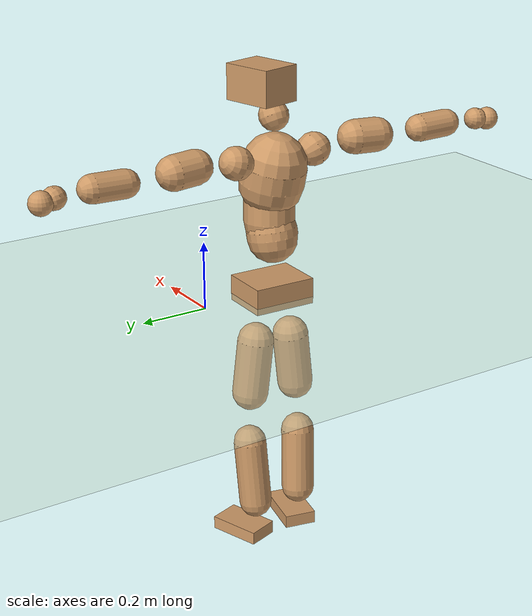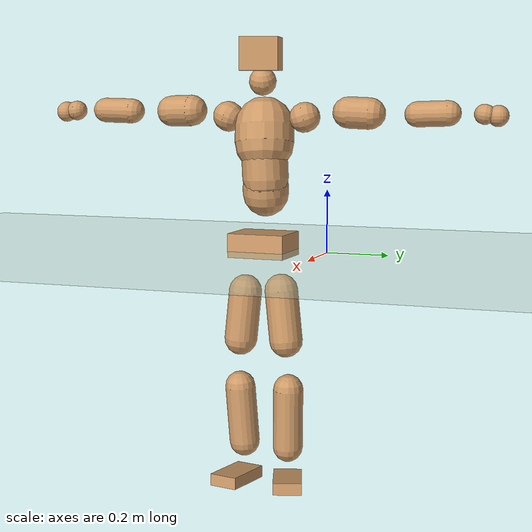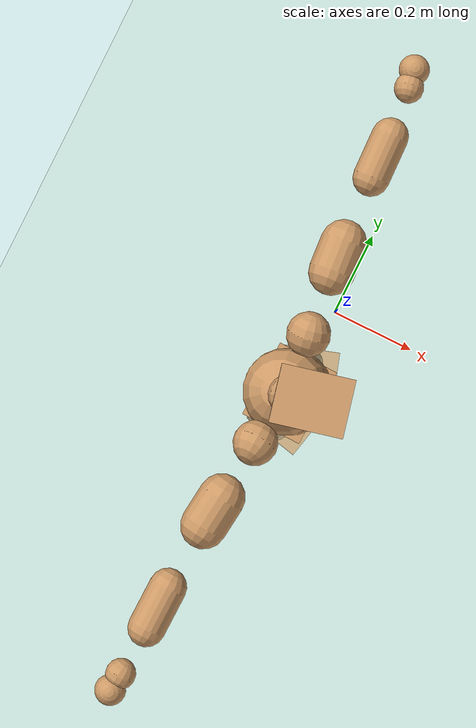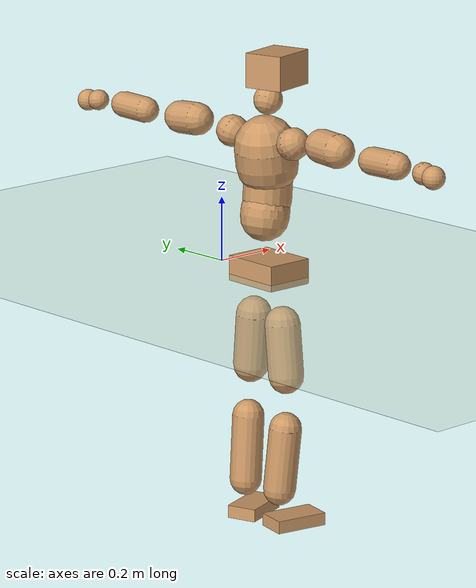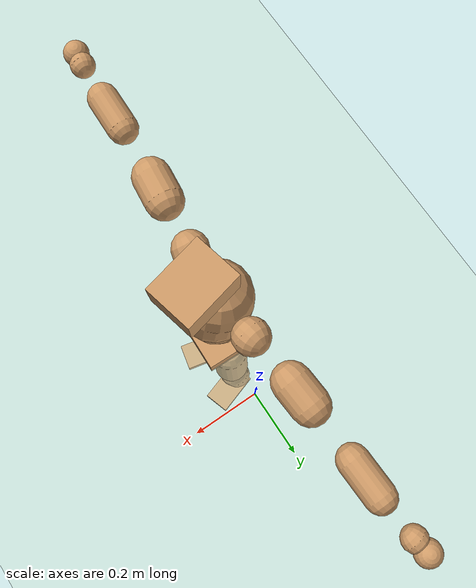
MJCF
<mujoco model="humanoid">
  <compiler coordinate="local" angle="radian"/>
  <default>
    <joint damping="0.0" armature="0.01" stiffness="0.0" limited="true"/>
    <geom conaffinity="1" condim="3" contype="7" margin="0.001" rgba="0.8 0.6 .4 1"/>
  </default>
  <asset>
    <texture type="skybox" builtin="gradient" rgb1=".4 .5 .6" rgb2="0 0 0" width="100" height="100"/>
    <texture builtin="flat" height="1278" mark="cross" markrgb="1 1 1" name="texgeom" random="0.01" rgb1="0.8 0.6 0.4" rgb2="0.8 0.6 0.4" type="cube" width="127"/>
    <texture builtin="checker" height="100" name="texplane" rgb1="0 0 0" rgb2="0.8 0.8 0.8" type="2d" width="100"/>
    <material name="MatPlane" reflectance="0.5" shininess="1" specular="1" texrepeat="60 60" texture="texplane"/>
    <material name="geom" texture="texgeom" texuniform="true"/>
  </asset>
  <worldbody>
    <light cutoff="100" diffuse="1 1 1" dir="-0 0 -1.3" directional="true" exponent="1" pos="0 0 1.3" specular=".1 .1 .1"/>
    <geom conaffinity="1" condim="3" name="floor" pos="0 0 0" rgba="0.8 0.9 0.8 1" size="100 100 .2" type="plane" material="MatPlane"/>
    <body name="Pelvis" pos="-0.0017 -0.2192 0.0243">
      <freejoint name="Pelvis"/>
      <geom type="box" contype="1" conaffinity="1" density="5359.374958" pos="-0.0099 0.0003 -0.0074" size="0.0748 0.0939 0.0386" quat="0.9999 0.0000 0.0000 -0.0145" name="Pelvis"/>
      <body name="L_Hip" pos="-0.016 0.0516 -0.0725">
        <joint name="L_Hip_x" type="hinge" pos="0 0 0" axis="1 0 0" stiffness="1600" damping="160" armature="0.02" range="-180.0000 180.0000"/>
        <joint name="L_Hip_y" type="hinge" pos="0 0 0" axis="0 1 0" stiffness="1600" damping="160" armature="0.02" range="-180.0000 180.0000"/>
        <joint name="L_Hip_z" type="hinge" pos="0 0 0" axis="0 0 1" stiffness="1600" damping="160" armature="0.02" range="-180.0000 180.0000"/>
        <geom type="capsule" contype="1" conaffinity="1" density="2040.816327" size="0.0539" fromto="0.0022 0.0091 -0.0834 0.0064 0.0269 -0.2471" name="L_Hip"/>
        <body name="L_Knee" pos="0.0085 0.036 -0.3305">
          <joint name="L_Knee_x" type="hinge" pos="0 0 0" axis="1 0 0" stiffness="1600" damping="160" armature="0.02" range="-180.0000 180.0000"/>
          <joint name="L_Knee_y" type="hinge" pos="0 0 0" axis="0 1 0" stiffness="1600" damping="160" armature="0.02" range="-180.0000 180.0000"/>
          <joint name="L_Knee_z" type="hinge" pos="0 0 0" axis="0 0 1" stiffness="1600" damping="160" armature="0.02" range="-180.0000 180.0000"/>
          <geom type="capsule" contype="1" conaffinity="1" density="1234.567901" size="0.0488" fromto="-0.0070 -0.0028 -0.0784 -0.0249 -0.0099 -0.2773" name="L_Knee"/>
          <body name="L_Ankle" pos="-0.0319 -0.0127 -0.3557">
            <joint name="L_Ankle_x" type="hinge" pos="0 0 0" axis="1 0 0" stiffness="1600" damping="160" armature="0.02" range="-180.0000 180.0000"/>
            <joint name="L_Ankle_y" type="hinge" pos="0 0 0" axis="0 1 0" stiffness="1600" damping="160" armature="0.02" range="-180.0000 180.0000"/>
            <joint name="L_Ankle_z" type="hinge" pos="0 0 0" axis="0 0 1" stiffness="1600" damping="160" armature="0.02" range="-180.0000 180.0000"/>
            <geom type="box" contype="1" conaffinity="1" density="1000.000029" pos="0.0552 0.0178 -0.0258" size="0.0795 0.0465 0.0196" quat="0.9878 0.0000 0.0000 0.1555" name="L_Ankle"/>
            <body name="L_Toe" pos="0.1104 0.0356 -0.0517">
              <joint name="L_Toe_x" type="hinge" pos="0 0 0" axis="1 0 0" stiffness="1000" damping="100" armature="0.02" range="-180.0000 180.0000"/>
              <joint name="L_Toe_y" type="hinge" pos="0 0 0" axis="0 1 0" stiffness="1000" damping="100" armature="0.02" range="-180.0000 180.0000"/>
              <joint name="L_Toe_z" type="hinge" pos="0 0 0" axis="0 0 1" stiffness="1000" damping="100" armature="0.02" range="-180.0000 180.0000"/>
              <geom type="box" contype="1" conaffinity="1" density="7979111.598824" pos="0.0000 0.0000 0.0251" size="0.001 0.0023 0.0009" quat="0.9870 0.0000 0.0000 0.1608" name="L_Toe"/>
            </body>
          </body>
        </body>
      </body>
      <body name="R_Hip" pos="-0.012 -0.0535 -0.0803">
        <joint name="R_Hip_x" type="hinge" pos="0 0 0" axis="1 0 0" stiffness="1600" damping="160" armature="0.02" range="-180.0000 180.0000"/>
        <joint name="R_Hip_y" type="hinge" pos="0 0 0" axis="0 1 0" stiffness="1600" damping="160" armature="0.02" range="-180.0000 180.0000"/>
        <joint name="R_Hip_z" type="hinge" pos="0 0 0" axis="0 0 1" stiffness="1600" damping="160" armature="0.02" range="-180.0000 180.0000"/>
        <geom type="capsule" contype="1" conaffinity="1" density="2040.816327" size="0.0535" fromto="-0.0004 -0.0088 -0.0831 -0.0011 -0.0256 -0.2421" name="R_Hip"/>
        <body name="R_Knee" pos="-0.0015 -0.0344 -0.3252">
          <joint name="R_Knee_x" type="hinge" pos="0 0 0" axis="1 0 0" stiffness="1600" damping="160" armature="0.02" range="-180.0000 180.0000"/>
          <joint name="R_Knee_y" type="hinge" pos="0 0 0" axis="0 1 0" stiffness="1600" damping="160" armature="0.02" range="-180.0000 180.0000"/>
          <joint name="R_Knee_z" type="hinge" pos="0 0 0" axis="0 0 1" stiffness="1600" damping="160" armature="0.02" range="-180.0000 180.0000"/>
          <geom type="capsule" contype="1" conaffinity="1" density="1234.567901" size="0.0497" fromto="-0.0066 0.0037 -0.0793 -0.0225 0.0124 -0.2686" name="R_Knee"/>
          <body name="R_Ankle" pos="-0.0291 0.016 -0.3479">
            <joint name="R_Ankle_x" type="hinge" pos="0 0 0" axis="1 0 0" stiffness="1600" damping="160" armature="0.02" range="-180.0000 180.0000"/>
            <joint name="R_Ankle_y" type="hinge" pos="0 0 0" axis="0 1 0" stiffness="1600" damping="160" armature="0.02" range="-180.0000 180.0000"/>
            <joint name="R_Ankle_z" type="hinge" pos="0 0 0" axis="0 0 1" stiffness="1600" damping="160" armature="0.02" range="-180.0000 180.0000"/>
            <geom type="box" contype="1" conaffinity="1" density="999.999993" pos="0.0587 -0.0128 -0.0271" size="0.0822 0.0478 0.0194" quat="0.9942 0.0000 0.0000 -0.1073" name="R_Ankle"/>
            <body name="R_Toe" pos="0.1175 -0.0257 -0.0542">
              <joint name="R_Toe_x" type="hinge" pos="0 0 0" axis="1 0 0" stiffness="1000" damping="100" armature="0.02" range="-180.0000 180.0000"/>
              <joint name="R_Toe_y" type="hinge" pos="0 0 0" axis="0 1 0" stiffness="1000" damping="100" armature="0.02" range="-180.0000 180.0000"/>
              <joint name="R_Toe_z" type="hinge" pos="0 0 0" axis="0 0 1" stiffness="1000" damping="100" armature="0.02" range="-180.0000 180.0000"/>
              <geom type="box" contype="1" conaffinity="1" density="8200315.057143" pos="0.0000 0.0000 0.0286" size="0.001 0.0024 0.001" quat="0.9952 0.0000 0.0000 -0.0976" name="R_Toe"/>
            </body>
          </body>
        </body>
      </body>
      <body name="Torso" pos="-0.0313 0.0036 0.1084">
        <joint name="Torso_x" type="hinge" pos="0 0 0" axis="1 0 0" stiffness="2000" damping="200" armature="0.02" range="-180.0000 180.0000"/>
        <joint name="Torso_y" type="hinge" pos="0 0 0" axis="0 1 0" stiffness="2000" damping="200" armature="0.02" range="-180.0000 180.0000"/>
        <joint name="Torso_z" type="hinge" pos="0 0 0" axis="0 0 1" stiffness="2000" damping="200" armature="0.02" range="-180.0000 180.0000"/>
        <geom type="capsule" contype="1" conaffinity="1" density="2040.816327" size="0.0739" fromto="0.0139 0.0026 0.0726 0.0092 0.0017 0.0481" name="Torso"/>
        <body name="Spine" pos="0.0231 0.0042 0.1207">
          <joint name="Spine_x" type="hinge" pos="0 0 0" axis="1 0 0" stiffness="2000" damping="200" armature="0.02" range="-180.0000 180.0000"/>
          <joint name="Spine_y" type="hinge" pos="0 0 0" axis="0 1 0" stiffness="2000" damping="200" armature="0.02" range="-180.0000 180.0000"/>
          <joint name="Spine_z" type="hinge" pos="0 0 0" axis="0 0 1" stiffness="2000" damping="200" armature="0.02" range="-180.0000 180.0000"/>
          <geom type="capsule" contype="1" conaffinity="1" density="2040.816327" size="0.0738" fromto="0.0034 -0.0023 0.0737 -0.0012 0.0008 -0.0247" name="Spine"/>
          <body name="Chest" pos="0.0023 -0.0016 0.049">
            <joint name="Chest_x" type="hinge" pos="0 0 0" axis="1 0 0" stiffness="2000" damping="200" armature="0.02" range="-180.0000 180.0000"/>
            <joint name="Chest_y" type="hinge" pos="0 0 0" axis="0 1 0" stiffness="2000" damping="200" armature="0.02" range="-180.0000 180.0000"/>
            <joint name="Chest_z" type="hinge" pos="0 0 0" axis="0 0 1" stiffness="2000" damping="200" armature="0.02" range="-180.0000 180.0000"/>
            <geom type="capsule" contype="1" conaffinity="1" density="2040.816327" size="0.0945" fromto="-0.0180 -0.0063 0.0926 -0.0076 -0.0027 0.0394" name="Chest"/>
            <body name="Neck" pos="-0.0334 -0.014 0.1915">
              <joint name="Neck_x" type="hinge" pos="0 0 0" axis="1 0 0" stiffness="1000" damping="100" armature="0.02" range="-180.0000 180.0000"/>
              <joint name="Neck_y" type="hinge" pos="0 0 0" axis="0 1 0" stiffness="1000" damping="100" armature="0.02" range="-180.0000 180.0000"/>
              <joint name="Neck_z" type="hinge" pos="0 0 0" axis="0 0 1" stiffness="1000" damping="100" armature="0.02" range="-180.0000 180.0000"/>
              <geom type="capsule" contype="1" conaffinity="1" density="1000" size="0.0434" fromto="0.0220 0.0045 0.0415 0.0229 0.0047 0.0433" name="Neck"/>
              <body name="Head" pos="0.045 0.0092 0.0848">
                <joint name="Head_x" type="hinge" pos="0 0 0" axis="1 0 0" stiffness="1000" damping="100" armature="0.02" range="-180.0000 180.0000"/>
                <joint name="Head_y" type="hinge" pos="0 0 0" axis="0 1 0" stiffness="1000" damping="100" armature="0.02" range="-180.0000 180.0000"/>
                <joint name="Head_z" type="hinge" pos="0 0 0" axis="0 0 1" stiffness="1000" damping="100" armature="0.02" range="-180.0000 180.0000"/>
                <geom type="box" contype="1" conaffinity="1" density="2249.999973" pos="0.0235 0.0056 0.0434" size="0.0763 0.0606 0.0518" quat="0.9932 0.0000 0.0000 0.1167" name="Head"/>
              </body>
            </body>
            <body name="L_Thorax" pos="-0.02 0.0656 0.1021">
              <joint name="L_Thorax_x" type="hinge" pos="0 0 0" axis="1 0 0" stiffness="1000" damping="100" armature="0.02" range="-180.0000 180.0000"/>
              <joint name="L_Thorax_y" type="hinge" pos="0 0 0" axis="0 1 0" stiffness="1000" damping="100" armature="0.02" range="-180.0000 180.0000"/>
              <joint name="L_Thorax_z" type="hinge" pos="0 0 0" axis="0 0 1" stiffness="1000" damping="100" armature="0.02" range="-180.0000 180.0000"/>
              <geom type="capsule" contype="1" conaffinity="1" density="1000" size="0.0483" fromto="-0.0089 0.0586 0.0193 -0.0092 0.0605 0.0199" name="L_Thorax"/>
              <body name="L_Shoulder" pos="-0.018 0.1191 0.0392">
                <joint name="L_Shoulder_x" type="hinge" pos="0 0 0" axis="1 0 0" stiffness="1000" damping="100" armature="0.02" range="-720.0000 720.0000"/>
                <joint name="L_Shoulder_y" type="hinge" pos="0 0 0" axis="0 1 0" stiffness="1000" damping="100" armature="0.02" range="-720.0000 720.0000"/>
                <joint name="L_Shoulder_z" type="hinge" pos="0 0 0" axis="0 0 1" stiffness="1000" damping="100" armature="0.02" range="-720.0000 720.0000"/>
                <geom type="capsule" contype="1" conaffinity="1" density="1000" size="0.0497" fromto="-0.0061 0.0794 -0.0035 -0.0114 0.1480 -0.0065" name="L_Shoulder"/>
                <body name="L_Elbow" pos="-0.0175 0.2274 -0.01">
                  <joint name="L_Elbow_x" type="hinge" pos="0 0 0" axis="1 0 0" stiffness="1000" damping="100" armature="0.02" range="-720.0000 720.0000"/>
                  <joint name="L_Elbow_y" type="hinge" pos="0 0 0" axis="0 1 0" stiffness="1000" damping="100" armature="0.02" range="-720.0000 720.0000"/>
                  <joint name="L_Elbow_z" type="hinge" pos="0 0 0" axis="0 0 1" stiffness="1000" damping="100" armature="0.02" range="-720.0000 720.0000"/>
                  <geom type="capsule" contype="1" conaffinity="1" density="1000" size="0.0396" fromto="-0.0025 0.0695 0.0025 -0.0059 0.1670 0.0061" name="L_Elbow"/>
                  <body name="L_Wrist" pos="-0.0084 0.2365 0.0087">
                    <joint name="L_Wrist_x" type="hinge" pos="0 0 0" axis="1 0 0" stiffness="600" damping="60" armature="0.02" range="-180.0000 180.0000"/>
                    <joint name="L_Wrist_y" type="hinge" pos="0 0 0" axis="0 1 0" stiffness="600" damping="60" armature="0.02" range="-180.0000 180.0000"/>
                    <joint name="L_Wrist_z" type="hinge" pos="0 0 0" axis="0 0 1" stiffness="600" damping="60" armature="0.02" range="-180.0000 180.0000"/>
                    <geom type="capsule" contype="1" conaffinity="1" density="1000" size="0.0318" fromto="-0.0069 0.0393 -0.0047 -0.0073 0.0412 -0.0050" name="L_Wrist"/>
                    <body name="L_Hand" pos="-0.0142 0.0805 -0.0097">
                      <joint name="L_Hand_x" type="hinge" pos="0 0 0" axis="1 0 0" stiffness="600" damping="60" armature="0.02" range="-180.0000 180.0000"/>
                      <joint name="L_Hand_y" type="hinge" pos="0 0 0" axis="0 1 0" stiffness="600" damping="60" armature="0.02" range="-180.0000 180.0000"/>
                      <joint name="L_Hand_z" type="hinge" pos="0 0 0" axis="0 0 1" stiffness="600" damping="60" armature="0.02" range="-180.0000 180.0000"/>
                      <geom type="sphere" contype="1" conaffinity="1" density="1000" size="0.0331" pos="0.0000 0.0000 0.0000" name="L_Hand"/>
                    </body>
                  </body>
                </body>
              </body>
            </body>
            <body name="R_Thorax" pos="-0.0236 -0.0785 0.1022">
              <joint name="R_Thorax_x" type="hinge" pos="0 0 0" axis="1 0 0" stiffness="1000" damping="100" armature="0.02" range="-180.0000 180.0000"/>
              <joint name="R_Thorax_y" type="hinge" pos="0 0 0" axis="0 1 0" stiffness="1000" damping="100" armature="0.02" range="-180.0000 180.0000"/>
              <joint name="R_Thorax_z" type="hinge" pos="0 0 0" axis="0 0 1" stiffness="1000" damping="100" armature="0.02" range="-180.0000 180.0000"/>
              <geom type="capsule" contype="1" conaffinity="1" density="1000" size="0.0487" fromto="-0.0040 -0.0533 0.0199 -0.0041 -0.0551 0.0206" name="R_Thorax"/>
              <body name="R_Shoulder" pos="-0.0082 -0.1084 0.0404">
                <joint name="R_Shoulder_x" type="hinge" pos="0 0 0" axis="1 0 0" stiffness="1000" damping="100" armature="0.02" range="-720.0000 720.0000"/>
                <joint name="R_Shoulder_y" type="hinge" pos="0 0 0" axis="0 1 0" stiffness="1000" damping="100" armature="0.02" range="-720.0000 720.0000"/>
                <joint name="R_Shoulder_z" type="hinge" pos="0 0 0" axis="0 0 1" stiffness="1000" damping="100" armature="0.02" range="-720.0000 720.0000"/>
                <geom type="capsule" contype="1" conaffinity="1" density="1000" size="0.0507" fromto="-0.0085 -0.0802 -0.0027 -0.0161 -0.1514 -0.0050" name="R_Shoulder"/>
                <body name="R_Elbow" pos="-0.0247 -0.2316 -0.0077">
                  <joint name="R_Elbow_x" type="hinge" pos="0 0 0" axis="1 0 0" stiffness="1000" damping="100" armature="0.02" range="-720.0000 720.0000"/>
                  <joint name="R_Elbow_y" type="hinge" pos="0 0 0" axis="0 1 0" stiffness="1000" damping="100" armature="0.02" range="-720.0000 720.0000"/>
                  <joint name="R_Elbow_z" type="hinge" pos="0 0 0" axis="0 0 1" stiffness="1000" damping="100" armature="0.02" range="-720.0000 720.0000"/>
                  <geom type="capsule" contype="1" conaffinity="1" density="1000" size="0.0406" fromto="-0.0014 -0.0706 0.0014 -0.0034 -0.1690 0.0035" name="R_Elbow"/>
                  <body name="R_Wrist" pos="-0.0048 -0.2396 0.0049">
                    <joint name="R_Wrist_x" type="hinge" pos="0 0 0" axis="1 0 0" stiffness="600" damping="60" armature="0.02" range="-180.0000 180.0000"/>
                    <joint name="R_Wrist_y" type="hinge" pos="0 0 0" axis="0 1 0" stiffness="600" damping="60" armature="0.02" range="-180.0000 180.0000"/>
                    <joint name="R_Wrist_z" type="hinge" pos="0 0 0" axis="0 0 1" stiffness="600" damping="60" armature="0.02" range="-180.0000 180.0000"/>
                    <geom type="capsule" contype="1" conaffinity="1" density="1000" size="0.0327" fromto="-0.0045 -0.0404 -0.0039 -0.0047 -0.0424 -0.0041" name="R_Wrist"/>
                    <body name="R_Hand" pos="-0.0092 -0.0827 -0.0081">
                      <joint name="R_Hand_x" type="hinge" pos="0 0 0" axis="1 0 0" stiffness="600" damping="60" armature="0.02" range="-180.0000 180.0000"/>
                      <joint name="R_Hand_y" type="hinge" pos="0 0 0" axis="0 1 0" stiffness="600" damping="60" armature="0.02" range="-180.0000 180.0000"/>
                      <joint name="R_Hand_z" type="hinge" pos="0 0 0" axis="0 0 1" stiffness="600" damping="60" armature="0.02" range="-180.0000 180.0000"/>
                      <geom type="sphere" contype="1" conaffinity="1" density="1000" size="0.0338" pos="0.0000 0.0000 0.0000" name="R_Hand"/>
                    </body>
                  </body>
                </body>
              </body>
            </body>
          </body>
        </body>
      </body>
    </body>
  </worldbody>
  <actuator>
    <motor name="L_Hip_x" joint="L_Hip_x" gear="500"/>
    <motor name="L_Hip_y" joint="L_Hip_y" gear="500"/>
    <motor name="L_Hip_z" joint="L_Hip_z" gear="500"/>
    <motor name="L_Knee_x" joint="L_Knee_x" gear="500"/>
    <motor name="L_Knee_y" joint="L_Knee_y" gear="500"/>
    <motor name="L_Knee_z" joint="L_Knee_z" gear="500"/>
    <motor name="L_Ankle_x" joint="L_Ankle_x" gear="500"/>
    <motor name="L_Ankle_y" joint="L_Ankle_y" gear="500"/>
    <motor name="L_Ankle_z" joint="L_Ankle_z" gear="500"/>
    <motor name="L_Toe_x" joint="L_Toe_x" gear="500"/>
    <motor name="L_Toe_y" joint="L_Toe_y" gear="500"/>
    <motor name="L_Toe_z" joint="L_Toe_z" gear="500"/>
    <motor name="R_Hip_x" joint="R_Hip_x" gear="500"/>
    <motor name="R_Hip_y" joint="R_Hip_y" gear="500"/>
    <motor name="R_Hip_z" joint="R_Hip_z" gear="500"/>
    <motor name="R_Knee_x" joint="R_Knee_x" gear="500"/>
    <motor name="R_Knee_y" joint="R_Knee_y" gear="500"/>
    <motor name="R_Knee_z" joint="R_Knee_z" gear="500"/>
    <motor name="R_Ankle_x" joint="R_Ankle_x" gear="500"/>
    <motor name="R_Ankle_y" joint="R_Ankle_y" gear="500"/>
    <motor name="R_Ankle_z" joint="R_Ankle_z" gear="500"/>
    <motor name="R_Toe_x" joint="R_Toe_x" gear="500"/>
    <motor name="R_Toe_y" joint="R_Toe_y" gear="500"/>
    <motor name="R_Toe_z" joint="R_Toe_z" gear="500"/>
    <motor name="Torso_x" joint="Torso_x" gear="500"/>
    <motor name="Torso_y" joint="Torso_y" gear="500"/>
    <motor name="Torso_z" joint="Torso_z" gear="500"/>
    <motor name="Spine_x" joint="Spine_x" gear="500"/>
    <motor name="Spine_y" joint="Spine_y" gear="500"/>
    <motor name="Spine_z" joint="Spine_z" gear="500"/>
    <motor name="Chest_x" joint="Chest_x" gear="500"/>
    <motor name="Chest_y" joint="Chest_y" gear="500"/>
    <motor name="Chest_z" joint="Chest_z" gear="500"/>
    <motor name="Neck_x" joint="Neck_x" gear="500"/>
    <motor name="Neck_y" joint="Neck_y" gear="500"/>
    <motor name="Neck_z" joint="Neck_z" gear="500"/>
    <motor name="Head_x" joint="Head_x" gear="500"/>
    <motor name="Head_y" joint="Head_y" gear="500"/>
    <motor name="Head_z" joint="Head_z" gear="500"/>
    <motor name="L_Thorax_x" joint="L_Thorax_x" gear="500"/>
    <motor name="L_Thorax_y" joint="L_Thorax_y" gear="500"/>
    <motor name="L_Thorax_z" joint="L_Thorax_z" gear="500"/>
    <motor name="L_Shoulder_x" joint="L_Shoulder_x" gear="500"/>
    <motor name="L_Shoulder_y" joint="L_Shoulder_y" gear="500"/>
    <motor name="L_Shoulder_z" joint="L_Shoulder_z" gear="500"/>
    <motor name="L_Elbow_x" joint="L_Elbow_x" gear="500"/>
    <motor name="L_Elbow_y" joint="L_Elbow_y" gear="500"/>
    <motor name="L_Elbow_z" joint="L_Elbow_z" gear="500"/>
    <motor name="L_Wrist_x" joint="L_Wrist_x" gear="500"/>
    <motor name="L_Wrist_y" joint="L_Wrist_y" gear="500"/>
    <motor name="L_Wrist_z" joint="L_Wrist_z" gear="500"/>
    <motor name="L_Hand_x" joint="L_Hand_x" gear="500"/>
    <motor name="L_Hand_y" joint="L_Hand_y" gear="500"/>
    <motor name="L_Hand_z" joint="L_Hand_z" gear="500"/>
    <motor name="R_Thorax_x" joint="R_Thorax_x" gear="500"/>
    <motor name="R_Thorax_y" joint="R_Thorax_y" gear="500"/>
    <motor name="R_Thorax_z" joint="R_Thorax_z" gear="500"/>
    <motor name="R_Shoulder_x" joint="R_Shoulder_x" gear="500"/>
    <motor name="R_Shoulder_y" joint="R_Shoulder_y" gear="500"/>
    <motor name="R_Shoulder_z" joint="R_Shoulder_z" gear="500"/>
    <motor name="R_Elbow_x" joint="R_Elbow_x" gear="500"/>
    <motor name="R_Elbow_y" joint="R_Elbow_y" gear="500"/>
    <motor name="R_Elbow_z" joint="R_Elbow_z" gear="500"/>
    <motor name="R_Wrist_x" joint="R_Wrist_x" gear="500"/>
    <motor name="R_Wrist_y" joint="R_Wrist_y" gear="500"/>
    <motor name="R_Wrist_z" joint="R_Wrist_z" gear="500"/>
    <motor name="R_Hand_x" joint="R_Hand_x" gear="500"/>
    <motor name="R_Hand_y" joint="R_Hand_y" gear="500"/>
    <motor name="R_Hand_z" joint="R_Hand_z" gear="500"/>
  </actuator>
  <contact>
    <exclude body1="Torso" body2="Chest"/>
    <exclude body1="Head" body2="Chest"/>
    <exclude body1="R_Knee" body2="R_Toe"/>
    <exclude body1="R_Knee" body2="L_Ankle"/>
    <exclude body1="R_Knee" body2="L_Toe"/>
    <exclude body1="L_Knee" body2="L_Toe"/>
    <exclude body1="L_Knee" body2="R_Ankle"/>
    <exclude body1="L_Knee" body2="R_Toe"/>
    <exclude body1="L_Shoulder" body2="Chest"/>
    <exclude body1="R_Shoulder" body2="Chest"/>
  </contact>
  <sensor/>
  <size njmax="700" nconmax="700"/>
</mujoco>
